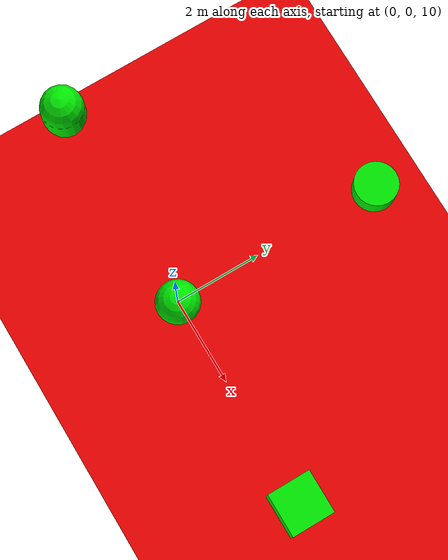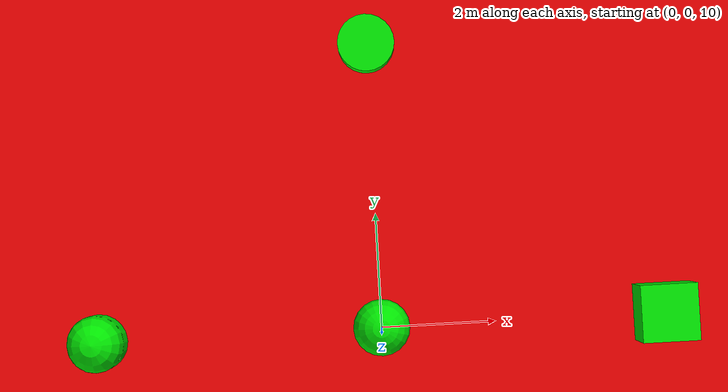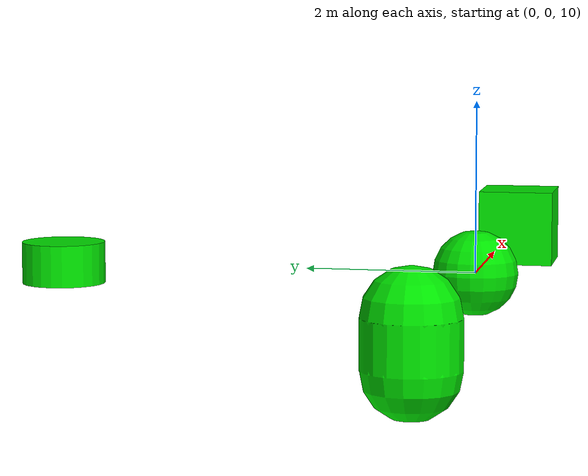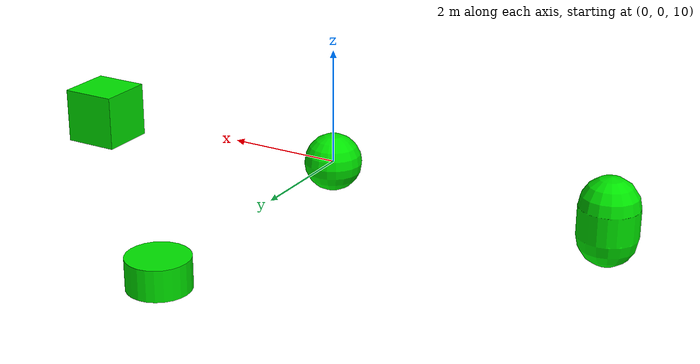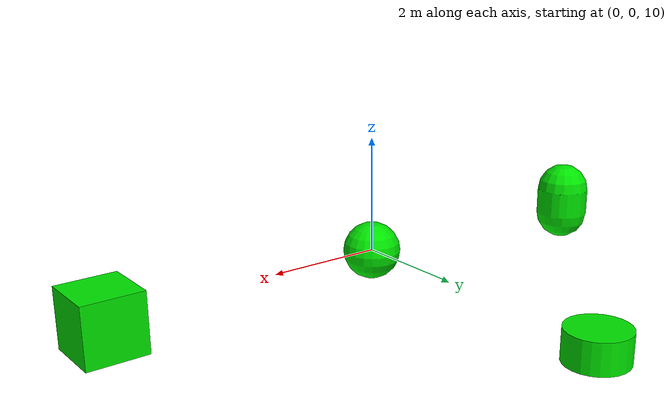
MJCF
<mujoco>
    <option cone="elliptic"/>

    <worldbody>
        <geom type="plane" size="10 10 1" rgba=".9 0 0 1"/>
        <body pos="0 0 10">
            <joint type="free"/>
            <geom type="sphere" size=".5" rgba="0 .9 0 1"/>
        </body>
        <body pos="5 0 10">
            <joint type="free"/>
            <geom type="box" size="0.5 0.5 0.5" rgba="0 .9 0 1"/>
        </body>
        <body pos="0 5 10">
            <joint type="free"/>
            <geom type="cylinder" size="0.5 0.25" rgba="0 .9 0 1"/>
        </body>
        <body pos="-5 0 10">
            <joint type="free"/>
            <geom type="capsule" size="0.5 0.25" rgba="0 .9 0 1"/>
        </body>
    </worldbody>
</mujoco>
